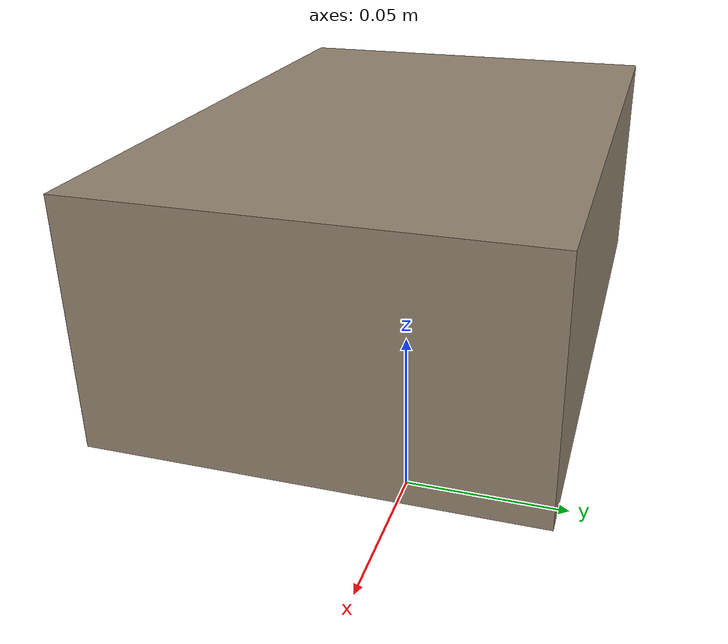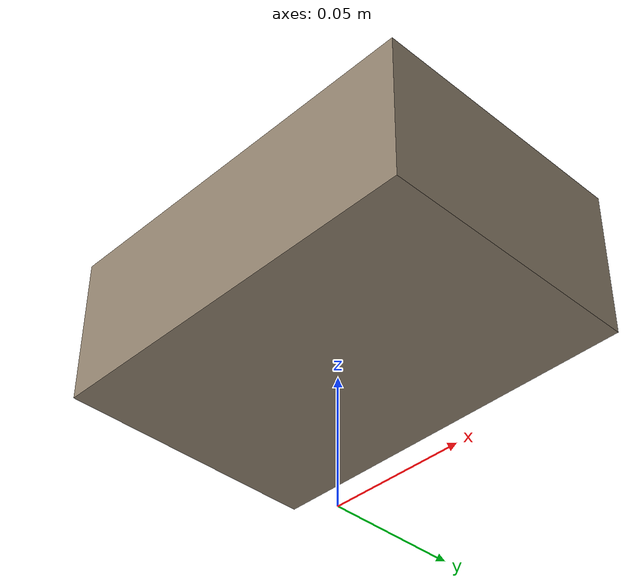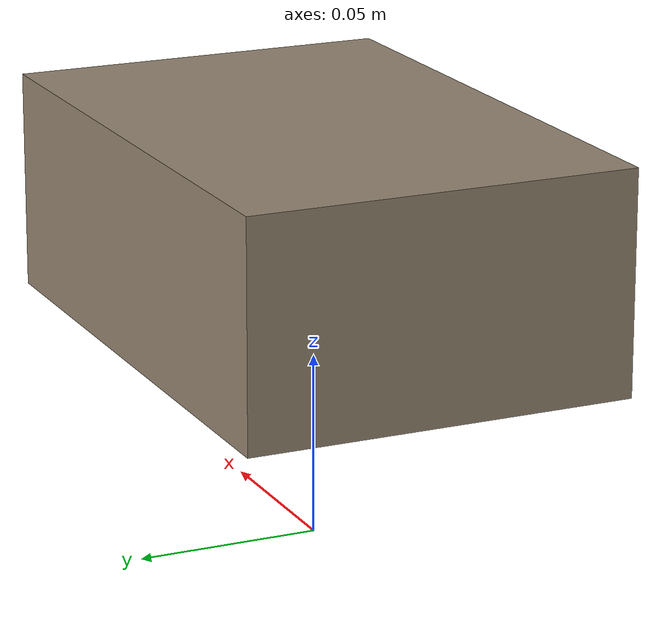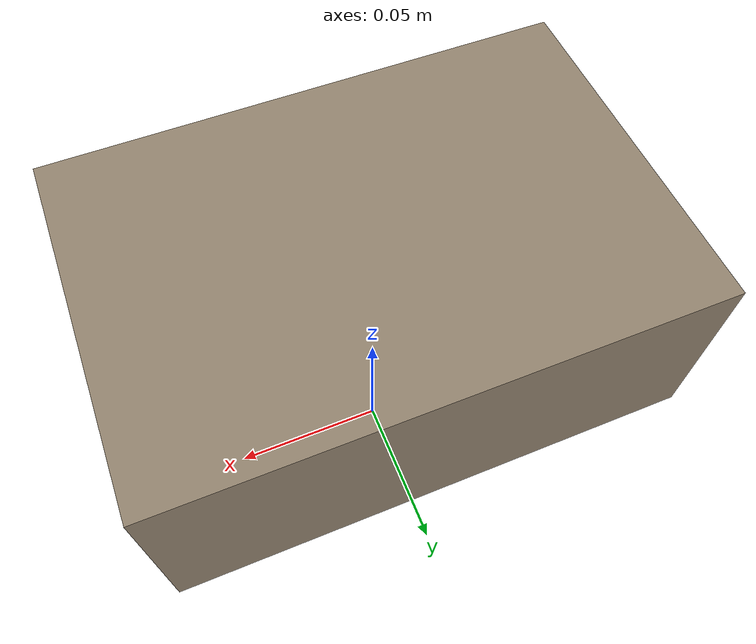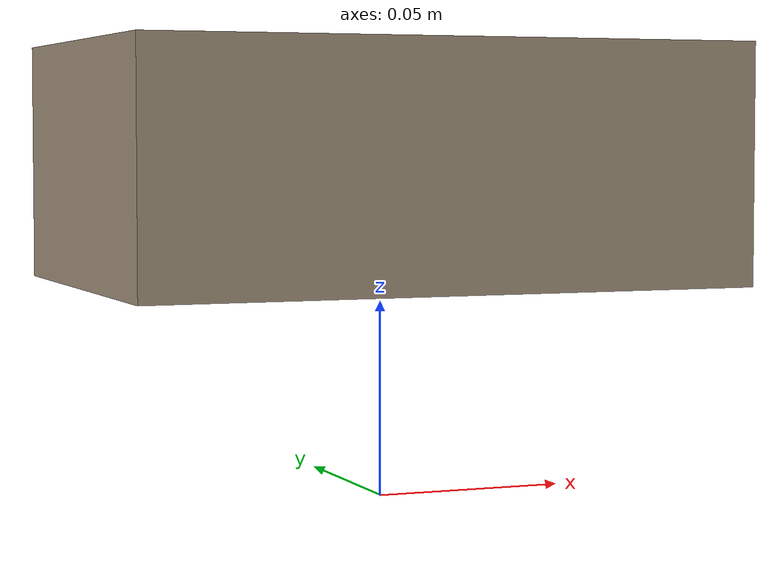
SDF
<?xml version="1.0"?>
<sdf version="1.9">
  <model name="room315_vla_payload_wide_box_within_keepout">
    <static>false</static>
    <link name="payload_link">
      <kinematic>true</kinematic>
      <gravity>false</gravity>
      <visual name="wide_box_body">
        <pose>0 0 0.085 0 0 0</pose>
        <geometry><box><size>0.155 0.105 0.060</size></box></geometry>
        <material><ambient>0.58 0.52 0.44 1</ambient><diffuse>0.58 0.52 0.44 1</diffuse><specular>0.08 0.08 0.08 1</specular></material>
      </visual>
      <collision name="wide_box_collision">
        <pose>0 0 0.085 0 0 0</pose>
        <geometry><box><size>0.155 0.105 0.060</size></box></geometry>
        <surface><contact><collide_bitmask>0x0000</collide_bitmask></contact></surface>
      </collision>
    </link>
  </model>
</sdf>
